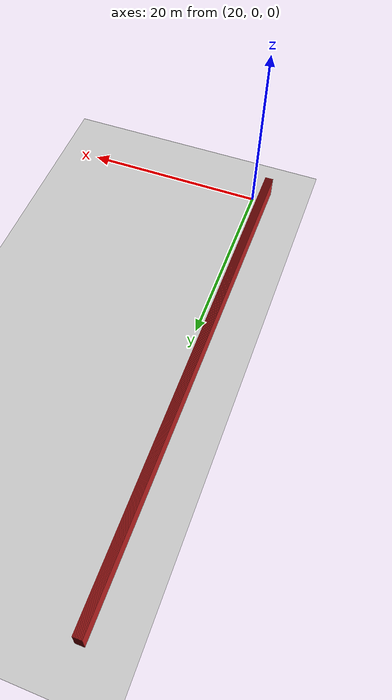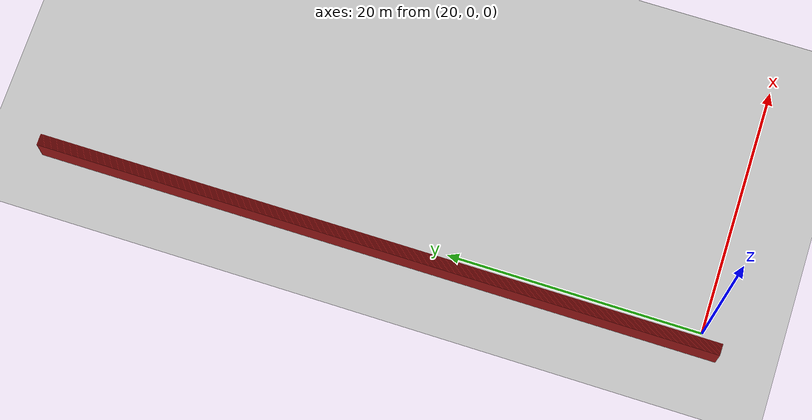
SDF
<sdf version="1.4">
 <world name="1_wall">
  <model name="ground_plane">
   <static>1</static>
   <link name="link">
    <collision name="collision">
     <geometry><plane><normal>0 0 1</normal><size>1000 1000</size></plane></geometry>
     <surface><friction><ode><mu>100</mu><mu2>50</mu2></ode></friction></surface>
    </collision>
    <visual name="visual">
     <cast_shadows>0</cast_shadows>
     <geometry><plane><normal>0 0 1</normal><size>10000 10000</size></plane></geometry>
     <material>
      <script><uri>file://media/materials/scripts/gazebo.material</uri><name>Gazebo/Grey</name></script>
     </material>
    </visual>
    <velocity_decay><linear>0</linear><angular>0</angular></velocity_decay>
   </link>
  </model>
  <model name="Wall_394">
   <static>1</static>
   <link name="Wall_394">
    <collision name="Wall_Collision_394">
     <geometry><box><size>53.65 0.05 2.5</size></box></geometry>
     <pose>0 0 1.25 0 -0 0</pose>
    </collision>
    <visual name="Wall_Visual_394">
     <pose>0 0 1.25 0 -0 0</pose>
     <geometry><box><size>53.65 0.05 2.5</size></box></geometry>
     <material>
      <script><uri>file://media/materials/scripts/gazebo.material</uri><name>Gazebo/Red</name></script>
     </material>
    </visual>
    <velocity_decay><linear>0</linear><angular>0</angular></velocity_decay>
    <pose>18.2 25.3 0 0 0 1.5707963267948966</pose>
   </link>
  </model>
  <model name="Wall_395">
   <static>1</static>
   <link name="Wall_395">
    <collision name="Wall_Collision_395">
     <geometry><box><size>53.65 0.05 2.5</size></box></geometry>
     <pose>0 0 1.25 0 -0 0</pose>
    </collision>
    <visual name="Wall_Visual_395">
     <pose>0 0 1.25 0 -0 0</pose>
     <geometry><box><size>53.65 0.05 2.5</size></box></geometry>
     <material>
      <script><uri>file://media/materials/scripts/gazebo.material</uri><name>Gazebo/Red</name></script>
     </material>
    </visual>
    <velocity_decay><linear>0</linear><angular>0</angular></velocity_decay>
    <pose>18.25 25.3 0 0 0 1.5707963267948966</pose>
   </link>
  </model>
  <model name="Wall_396">
   <static>1</static>
   <link name="Wall_396">
    <collision name="Wall_Collision_396">
     <geometry><box><size>53.65 0.05 2.5</size></box></geometry>
     <pose>0 0 1.25 0 -0 0</pose>
    </collision>
    <visual name="Wall_Visual_396">
     <pose>0 0 1.25 0 -0 0</pose>
     <geometry><box><size>53.65 0.05 2.5</size></box></geometry>
     <material>
      <script><uri>file://media/materials/scripts/gazebo.material</uri><name>Gazebo/Red</name></script>
     </material>
    </visual>
    <velocity_decay><linear>0</linear><angular>0</angular></velocity_decay>
    <pose>18.3 25.3 0 0 0 1.5707963267948966</pose>
   </link>
  </model>
  <model name="Wall_397">
   <static>1</static>
   <link name="Wall_397">
    <collision name="Wall_Collision_397">
     <geometry><box><size>53.65 0.05 2.5</size></box></geometry>
     <pose>0 0 1.25 0 -0 0</pose>
    </collision>
    <visual name="Wall_Visual_397">
     <pose>0 0 1.25 0 -0 0</pose>
     <geometry><box><size>53.65 0.05 2.5</size></box></geometry>
     <material>
      <script><uri>file://media/materials/scripts/gazebo.material</uri><name>Gazebo/Red</name></script>
     </material>
    </visual>
    <velocity_decay><linear>0</linear><angular>0</angular></velocity_decay>
    <pose>18.35 25.3 0 0 0 1.5707963267948966</pose>
   </link>
  </model>
  <model name="Wall_398">
   <static>1</static>
   <link name="Wall_398">
    <collision name="Wall_Collision_398">
     <geometry><box><size>53.65 0.05 2.5</size></box></geometry>
     <pose>0 0 1.25 0 -0 0</pose>
    </collision>
    <visual name="Wall_Visual_398">
     <pose>0 0 1.25 0 -0 0</pose>
     <geometry><box><size>53.65 0.05 2.5</size></box></geometry>
     <material>
      <script><uri>file://media/materials/scripts/gazebo.material</uri><name>Gazebo/Red</name></script>
     </material>
    </visual>
    <velocity_decay><linear>0</linear><angular>0</angular></velocity_decay>
    <pose>18.4 25.3 0 0 0 1.5707963267948966</pose>
   </link>
  </model>
  <model name="Wall_399">
   <static>1</static>
   <link name="Wall_399">
    <collision name="Wall_Collision_399">
     <geometry><box><size>53.65 0.05 2.5</size></box></geometry>
     <pose>0 0 1.25 0 -0 0</pose>
    </collision>
    <visual name="Wall_Visual_399">
     <pose>0 0 1.25 0 -0 0</pose>
     <geometry><box><size>53.65 0.05 2.5</size></box></geometry>
     <material>
      <script><uri>file://media/materials/scripts/gazebo.material</uri><name>Gazebo/Red</name></script>
     </material>
    </visual>
    <velocity_decay><linear>0</linear><angular>0</angular></velocity_decay>
    <pose>18.45 25.3 0 0 0 1.5707963267948966</pose>
   </link>
  </model>
  <model name="Wall_400">
   <static>1</static>
   <link name="Wall_400">
    <collision name="Wall_Collision_400">
     <geometry><box><size>53.65 0.05 2.5</size></box></geometry>
     <pose>0 0 1.25 0 -0 0</pose>
    </collision>
    <visual name="Wall_Visual_400">
     <pose>0 0 1.25 0 -0 0</pose>
     <geometry><box><size>53.65 0.05 2.5</size></box></geometry>
     <material>
      <script><uri>file://media/materials/scripts/gazebo.material</uri><name>Gazebo/Red</name></script>
     </material>
    </visual>
    <velocity_decay><linear>0</linear><angular>0</angular></velocity_decay>
    <pose>18.5 25.3 0 0 0 1.5707963267948966</pose>
   </link>
  </model>
  <model name="Wall_401">
   <static>1</static>
   <link name="Wall_401">
    <collision name="Wall_Collision_401">
     <geometry><box><size>53.65 0.05 2.5</size></box></geometry>
     <pose>0 0 1.25 0 -0 0</pose>
    </collision>
    <visual name="Wall_Visual_401">
     <pose>0 0 1.25 0 -0 0</pose>
     <geometry><box><size>53.65 0.05 2.5</size></box></geometry>
     <material>
      <script><uri>file://media/materials/scripts/gazebo.material</uri><name>Gazebo/Red</name></script>
     </material>
    </visual>
    <velocity_decay><linear>0</linear><angular>0</angular></velocity_decay>
    <pose>18.55 25.3 0 0 0 1.5707963267948966</pose>
   </link>
  </model>
  <model name="Wall_402">
   <static>1</static>
   <link name="Wall_402">
    <collision name="Wall_Collision_402">
     <geometry><box><size>53.65 0.05 2.5</size></box></geometry>
     <pose>0 0 1.25 0 -0 0</pose>
    </collision>
    <visual name="Wall_Visual_402">
     <pose>0 0 1.25 0 -0 0</pose>
     <geometry><box><size>53.65 0.05 2.5</size></box></geometry>
     <material>
      <script><uri>file://media/materials/scripts/gazebo.material</uri><name>Gazebo/Red</name></script>
     </material>
    </visual>
    <velocity_decay><linear>0</linear><angular>0</angular></velocity_decay>
    <pose>18.6 25.3 0 0 0 1.5707963267948966</pose>
   </link>
  </model>
  <model name="Wall_403">
   <static>1</static>
   <link name="Wall_403">
    <collision name="Wall_Collision_403">
     <geometry><box><size>53.65 0.05 2.5</size></box></geometry>
     <pose>0 0 1.25 0 -0 0</pose>
    </collision>
    <visual name="Wall_Visual_403">
     <pose>0 0 1.25 0 -0 0</pose>
     <geometry><box><size>53.65 0.05 2.5</size></box></geometry>
     <material>
      <script><uri>file://media/materials/scripts/gazebo.material</uri><name>Gazebo/Red</name></script>
     </material>
    </visual>
    <velocity_decay><linear>0</linear><angular>0</angular></velocity_decay>
    <pose>18.65 25.3 0 0 0 1.5707963267948966</pose>
   </link>
  </model>
  <model name="Wall_404">
   <static>1</static>
   <link name="Wall_404">
    <collision name="Wall_Collision_404">
     <geometry><box><size>53.65 0.05 2.5</size></box></geometry>
     <pose>0 0 1.25 0 -0 0</pose>
    </collision>
    <visual name="Wall_Visual_404">
     <pose>0 0 1.25 0 -0 0</pose>
     <geometry><box><size>53.65 0.05 2.5</size></box></geometry>
     <material>
      <script><uri>file://media/materials/scripts/gazebo.material</uri><name>Gazebo/Red</name></script>
     </material>
    </visual>
    <velocity_decay><linear>0</linear><angular>0</angular></velocity_decay>
    <pose>18.7 25.3 0 0 0 1.5707963267948966</pose>
   </link>
  </model>
  <model name="Wall_405">
   <static>1</static>
   <link name="Wall_405">
    <collision name="Wall_Collision_405">
     <geometry><box><size>53.65 0.05 2.5</size></box></geometry>
     <pose>0 0 1.25 0 -0 0</pose>
    </collision>
    <visual name="Wall_Visual_405">
     <pose>0 0 1.25 0 -0 0</pose>
     <geometry><box><size>53.65 0.05 2.5</size></box></geometry>
     <material>
      <script><uri>file://media/materials/scripts/gazebo.material</uri><name>Gazebo/Red</name></script>
     </material>
    </visual>
    <velocity_decay><linear>0</linear><angular>0</angular></velocity_decay>
    <pose>18.75 25.3 0 0 0 1.5707963267948966</pose>
   </link>
  </model>
  <model name="Wall_406">
   <static>1</static>
   <link name="Wall_406">
    <collision name="Wall_Collision_406">
     <geometry><box><size>53.65 0.05 2.5</size></box></geometry>
     <pose>0 0 1.25 0 -0 0</pose>
    </collision>
    <visual name="Wall_Visual_406">
     <pose>0 0 1.25 0 -0 0</pose>
     <geometry><box><size>53.65 0.05 2.5</size></box></geometry>
     <material>
      <script><uri>file://media/materials/scripts/gazebo.material</uri><name>Gazebo/Red</name></script>
     </material>
    </visual>
    <velocity_decay><linear>0</linear><angular>0</angular></velocity_decay>
    <pose>18.8 25.3 0 0 0 1.5707963267948966</pose>
   </link>
  </model>
  <model name="Wall_407">
   <static>1</static>
   <link name="Wall_407">
    <collision name="Wall_Collision_407">
     <geometry><box><size>53.65 0.05 2.5</size></box></geometry>
     <pose>0 0 1.25 0 -0 0</pose>
    </collision>
    <visual name="Wall_Visual_407">
     <pose>0 0 1.25 0 -0 0</pose>
     <geometry><box><size>53.65 0.05 2.5</size></box></geometry>
     <material>
      <script><uri>file://media/materials/scripts/gazebo.material</uri><name>Gazebo/Red</name></script>
     </material>
    </visual>
    <velocity_decay><linear>0</linear><angular>0</angular></velocity_decay>
    <pose>18.85 25.3 0 0 0 1.5707963267948966</pose>
   </link>
  </model>
  <model name="Wall_408">
   <static>1</static>
   <link name="Wall_408">
    <collision name="Wall_Collision_408">
     <geometry><box><size>53.65 0.05 2.5</size></box></geometry>
     <pose>0 0 1.25 0 -0 0</pose>
    </collision>
    <visual name="Wall_Visual_408">
     <pose>0 0 1.25 0 -0 0</pose>
     <geometry><box><size>53.65 0.05 2.5</size></box></geometry>
     <material>
      <script><uri>file://media/materials/scripts/gazebo.material</uri><name>Gazebo/Red</name></script>
     </material>
    </visual>
    <velocity_decay><linear>0</linear><angular>0</angular></velocity_decay>
    <pose>18.9 25.3 0 0 0 1.5707963267948966</pose>
   </link>
  </model>
  <model name="Wall_409">
   <static>1</static>
   <link name="Wall_409">
    <collision name="Wall_Collision_409">
     <geometry><box><size>53.65 0.05 2.5</size></box></geometry>
     <pose>0 0 1.25 0 -0 0</pose>
    </collision>
    <visual name="Wall_Visual_409">
     <pose>0 0 1.25 0 -0 0</pose>
     <geometry><box><size>53.65 0.05 2.5</size></box></geometry>
     <material>
      <script><uri>file://media/materials/scripts/gazebo.material</uri><name>Gazebo/Red</name></script>
     </material>
    </visual>
    <velocity_decay><linear>0</linear><angular>0</angular></velocity_decay>
    <pose>18.95 25.3 0 0 0 1.5707963267948966</pose>
   </link>
  </model>
  <model name="Wall_410">
   <static>1</static>
   <link name="Wall_410">
    <collision name="Wall_Collision_410">
     <geometry><box><size>53.65 0.05 2.5</size></box></geometry>
     <pose>0 0 1.25 0 -0 0</pose>
    </collision>
    <visual name="Wall_Visual_410">
     <pose>0 0 1.25 0 -0 0</pose>
     <geometry><box><size>53.65 0.05 2.5</size></box></geometry>
     <material>
      <script><uri>file://media/materials/scripts/gazebo.material</uri><name>Gazebo/Red</name></script>
     </material>
    </visual>
    <velocity_decay><linear>0</linear><angular>0</angular></velocity_decay>
    <pose>19.0 25.3 0 0 0 1.5707963267948966</pose>
   </link>
  </model>
  <model name="Wall_411">
   <static>1</static>
   <link name="Wall_411">
    <collision name="Wall_Collision_411">
     <geometry><box><size>53.65 0.05 2.5</size></box></geometry>
     <pose>0 0 1.25 0 -0 0</pose>
    </collision>
    <visual name="Wall_Visual_411">
     <pose>0 0 1.25 0 -0 0</pose>
     <geometry><box><size>53.65 0.05 2.5</size></box></geometry>
     <material>
      <script><uri>file://media/materials/scripts/gazebo.material</uri><name>Gazebo/Red</name></script>
     </material>
    </visual>
    <velocity_decay><linear>0</linear><angular>0</angular></velocity_decay>
    <pose>19.05 25.3 0 0 0 1.5707963267948966</pose>
   </link>
  </model>
 </world>
</sdf>
